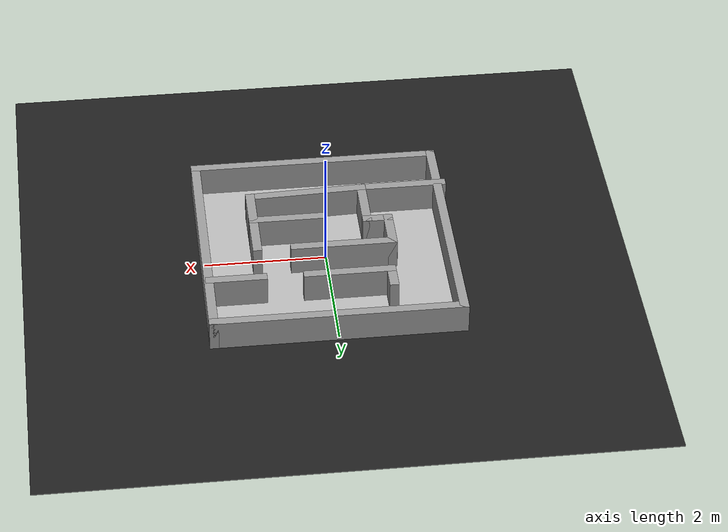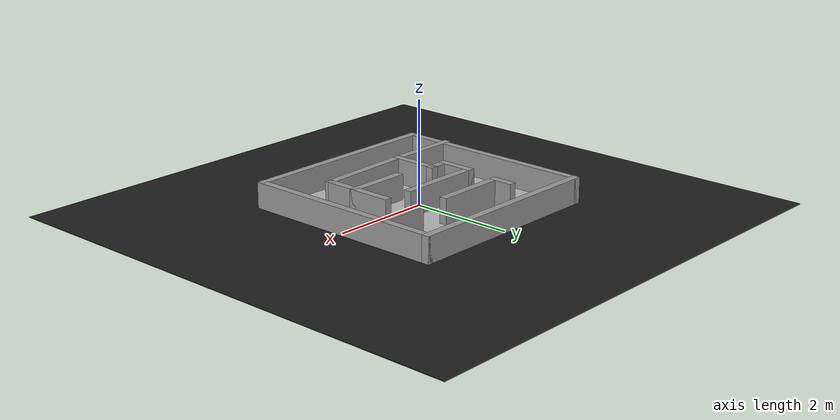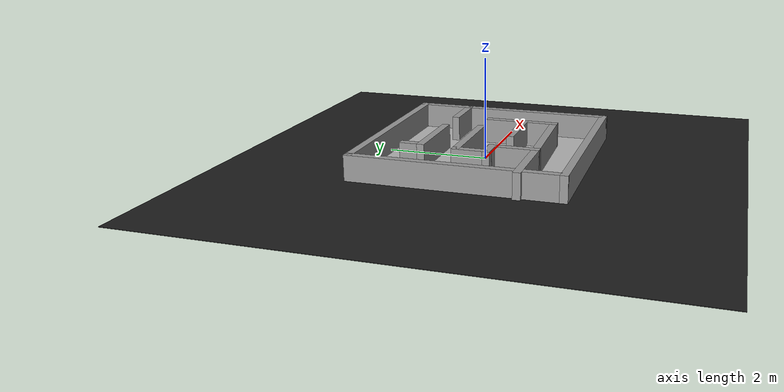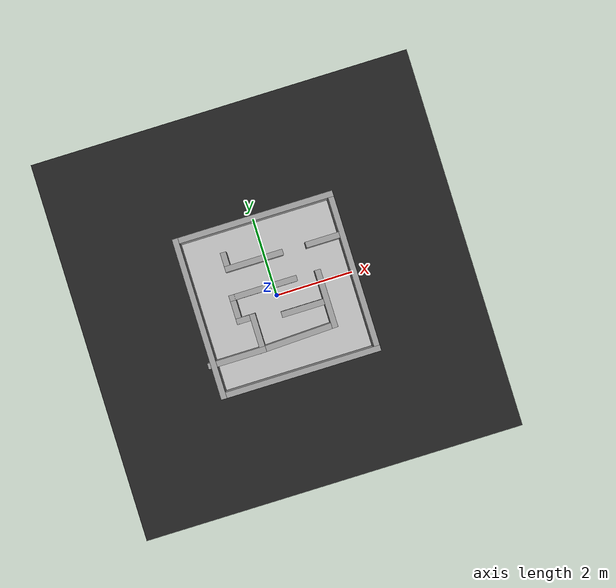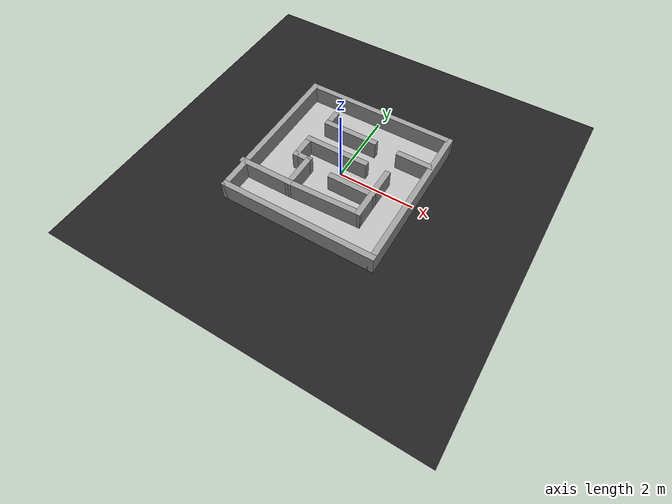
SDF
<sdf version='1.7'>
  <world name='default'>
    <scene>
      <ambient>0 0 0 1</ambient>
      <shadows>0</shadows>
      <grid>0</grid>
      <background>0.7 0.7 0.7 1</background>
    </scene>

    <model name='ground'>
      <pose frame=''>0 0 -0.1 0 -0 0</pose>
      <static>1</static>
      <link name='ground'>
        <collision name='ground_coll'>
          <geometry>
            <box>
              <size>8 8 0.01</size>
            </box>
          </geometry>
          <surface>
            <contact>
              <ode/>
            </contact>
            <bounce/>
            <friction>
              <torsional>
                <ode/>
              </torsional>
              <ode/>
            </friction>
          </surface>
          <max_contacts>10</max_contacts>
        </collision>
        <visual name='ground_vis'>
          <geometry>
            <box>
              <size>10 10 0.01</size>
            </box>
          </geometry>
          <material>
            <script>
              <uri>file://media/materials/scripts/gazebo.material</uri>
              <name>Gazebo/FlatBlack</name>
            </script>
          </material>
        </visual>
        <self_collide>0</self_collide>
        <kinematic>0</kinematic>
        <gravity>1</gravity>
      </link>
    </model>

    <magnetic_field>6e-06 2.3e-05 -4.2e-05</magnetic_field>
    <atmosphere type='adiabatic'/>
    <physics name='default_physics' default='0' type='ode'>
      <max_step_size>0.005</max_step_size>
      <real_time_factor>1</real_time_factor>
      <real_time_update_rate>1000</real_time_update_rate>
      <gravity>0 0 -9.8</gravity>
    </physics>
    <spherical_coordinates>
      <surface_model>EARTH_WGS84</surface_model>
      <latitude_deg>0</latitude_deg>
      <longitude_deg>0</longitude_deg>
      <elevation>0</elevation>
      <heading_deg>0</heading_deg>
    </spherical_coordinates>

    <include>
      <uri>model://sun</uri>
    </include>

    <include>
      <uri>model://lidar_course1/course</uri>
    </include>

    <include>
      <uri>model://lidar_course1/Outer_Walls</uri>
    </include>

    <include>
      <uri>model://lidar_course1/Maze1</uri>
    </include>
  </world>
</sdf>

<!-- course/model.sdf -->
<sdf version="1.6">
  <model name="course">
    <static>true</static>
    <link name="course_link">
      <collision name="course_collision">
        <geometry>
          <plane>
            <normal>0 0 1</normal>
            <size>4 4</size>
          </plane>
        </geometry>
        <surface>
          <friction>
            <ode>
              <mu>100</mu>
              <mu2>50</mu2>
            </ode>
          </friction>
        </surface>
      </collision>
      <visual name="course_visual">
        <cast_shadows>false</cast_shadows>
        <geometry>
	        <plane>
            <normal>0 0 1</normal>
            <size>4 4</size>
          </plane>
        </geometry>
	      <material>
          <script>
            <uri>model://lidar_course1/course/materials/scripts</uri>
            <uri>model://lidar_course1/course/materials/textures</uri>
            <name>course</name>
          </script>
        </material>
      </visual>
    </link>
  </model>
</sdf>

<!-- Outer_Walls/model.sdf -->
<sdf version='1.7'>
  <model name='Outer_Walls'>
    <link name='Wall_13'>
      <pose>-2 0 0 0 -0 1.5708</pose>
      <self_collide>0</self_collide>
      <enable_wind>0</enable_wind>
      <kinematic>0</kinematic>
      <visual name='Wall_13_Visual'>
        <pose>0 0 0.25 0 -0 0</pose>
        <geometry>
          <box>
            <size>4.15 0.15 0.5</size>
          </box>
        </geometry>
        <material>
          <script>
            <uri>file://media/materials/scripts/gazebo.material</uri>
            <name>Gazebo/Grey</name>
          </script>
          <ambient>1 1 1 1</ambient>
          <shader type='pixel'/>
        </material>
        <meta>
          <layer>0</layer>
        </meta>
        <transparency>0</transparency>
        <cast_shadows>1</cast_shadows>
      </visual>
      <collision name='Wall_13_Collision'>
        <laser_retro>0</laser_retro>
        <max_contacts>10</max_contacts>
        <pose>0 0 0.25 0 -0 0</pose>
        <geometry>
          <box>
            <size>4.15 0.15 0.5</size>
          </box>
        </geometry>
        <surface>
          <friction>
            <ode>
              <mu>1</mu>
              <mu2>1</mu2>
              <fdir1>0 0 0</fdir1>
              <slip1>0</slip1>
              <slip2>0</slip2>
            </ode>
            <torsional>
              <coefficient>1</coefficient>
              <patch_radius>0</patch_radius>
              <surface_radius>0</surface_radius>
              <use_patch_radius>1</use_patch_radius>
              <ode>
                <slip>0</slip>
              </ode>
            </torsional>
          </friction>
          <bounce>
            <restitution_coefficient>0</restitution_coefficient>
            <threshold>1e+06</threshold>
          </bounce>
          <contact>
            <collide_without_contact>0</collide_without_contact>
            <collide_without_contact_bitmask>1</collide_without_contact_bitmask>
            <collide_bitmask>1</collide_bitmask>
            <ode>
              <soft_cfm>0</soft_cfm>
              <soft_erp>0.2</soft_erp>
              <kp>1e+13</kp>
              <kd>1</kd>
              <max_vel>0.01</max_vel>
              <min_depth>0</min_depth>
            </ode>
            <bullet>
              <split_impulse>1</split_impulse>
              <split_impulse_penetration_threshold>-0.01</split_impulse_penetration_threshold>
              <soft_cfm>0</soft_cfm>
              <soft_erp>0.2</soft_erp>
              <kp>1e+13</kp>
              <kd>1</kd>
            </bullet>
          </contact>
        </surface>
      </collision>
    </link>
    <link name='Wall_18'>
      <pose>0 2 0 0 -0 0</pose>
      <self_collide>0</self_collide>
      <enable_wind>0</enable_wind>
      <kinematic>0</kinematic>
      <visual name='Wall_18_Visual'>
        <pose>0 0 0.25 0 -0 0</pose>
        <geometry>
          <box>
            <size>4.15 0.15 0.5</size>
          </box>
        </geometry>
        <material>
          <script>
            <uri>file://media/materials/scripts/gazebo.material</uri>
            <name>Gazebo/Grey</name>
          </script>
          <ambient>1 1 1 1</ambient>
          <shader type='pixel'/>
        </material>
        <meta>
          <layer>0</layer>
        </meta>
        <transparency>0</transparency>
        <cast_shadows>1</cast_shadows>
      </visual>
      <collision name='Wall_18_Collision'>
        <laser_retro>0</laser_retro>
        <max_contacts>10</max_contacts>
        <pose>0 0 0.25 0 -0 0</pose>
        <geometry>
          <box>
            <size>4.15 0.15 0.5</size>
          </box>
        </geometry>
        <surface>
          <friction>
            <ode>
              <mu>1</mu>
              <mu2>1</mu2>
              <fdir1>0 0 0</fdir1>
              <slip1>0</slip1>
              <slip2>0</slip2>
            </ode>
            <torsional>
              <coefficient>1</coefficient>
              <patch_radius>0</patch_radius>
              <surface_radius>0</surface_radius>
              <use_patch_radius>1</use_patch_radius>
              <ode>
                <slip>0</slip>
              </ode>
            </torsional>
          </friction>
          <bounce>
            <restitution_coefficient>0</restitution_coefficient>
            <threshold>1e+06</threshold>
          </bounce>
          <contact>
            <collide_without_contact>0</collide_without_contact>
            <collide_without_contact_bitmask>1</collide_without_contact_bitmask>
            <collide_bitmask>1</collide_bitmask>
            <ode>
              <soft_cfm>0</soft_cfm>
              <soft_erp>0.2</soft_erp>
              <kp>1e+13</kp>
              <kd>1</kd>
              <max_vel>0.01</max_vel>
              <min_depth>0</min_depth>
            </ode>
            <bullet>
              <split_impulse>1</split_impulse>
              <split_impulse_penetration_threshold>-0.01</split_impulse_penetration_threshold>
              <soft_cfm>0</soft_cfm>
              <soft_erp>0.2</soft_erp>
              <kp>1e+13</kp>
              <kd>1</kd>
            </bullet>
          </contact>
        </surface>
      </collision>
    </link>
    <link name='Wall_20'>
      <pose>0 -2 0 0 -0 0</pose>
      <self_collide>0</self_collide>
      <enable_wind>0</enable_wind>
      <kinematic>0</kinematic>
      <gravity>1</gravity>
      <inertial>
        <mass>1</mass>
        <pose>0 0 0 0 -0 0</pose>
        <inertia>
          <ixx>1</ixx>
          <ixy>0</ixy>
          <ixz>0</ixz>
          <iyy>1</iyy>
          <iyz>0</iyz>
          <izz>1</izz>
        </inertia>
      </inertial>
      <visual name='Wall_20_Visual'>
        <pose>0 0 0.25 0 -0 0</pose>
        <geometry>
          <box>
            <size>4.15 0.15 0.5</size>
          </box>
        </geometry>
        <material>
          <script>
            <uri>file://media/materials/scripts/gazebo.material</uri>
            <name>Gazebo/Grey</name>
          </script>
          <ambient>1 1 1 1</ambient>
          <shader type='pixel'>
            <normal_map>__default__</normal_map>
          </shader>
          <diffuse>0.7 0.7 0.7 1</diffuse>
          <specular>0.01 0.01 0.01 1</specular>
          <emissive>0 0 0 1</emissive>
        </material>
        <meta>
          <layer>0</layer>
        </meta>
        <transparency>0</transparency>
        <cast_shadows>1</cast_shadows>
      </visual>
      <collision name='Wall_20_Collision'>
        <laser_retro>0</laser_retro>
        <max_contacts>10</max_contacts>
        <pose>0 0 0.25 0 -0 0</pose>
        <geometry>
          <box>
            <size>4.15 0.15 0.5</size>
          </box>
        </geometry>
        <surface>
          <friction>
            <ode>
              <mu>1</mu>
              <mu2>1</mu2>
              <fdir1>0 0 0</fdir1>
              <slip1>0</slip1>
              <slip2>0</slip2>
            </ode>
            <torsional>
              <coefficient>1</coefficient>
              <patch_radius>0</patch_radius>
              <surface_radius>0</surface_radius>
              <use_patch_radius>1</use_patch_radius>
              <ode>
                <slip>0</slip>
              </ode>
            </torsional>
          </friction>
          <bounce>
            <restitution_coefficient>0</restitution_coefficient>
            <threshold>1e+06</threshold>
          </bounce>
          <contact>
            <collide_without_contact>0</collide_without_contact>
            <collide_without_contact_bitmask>1</collide_without_contact_bitmask>
            <collide_bitmask>1</collide_bitmask>
            <ode>
              <soft_cfm>0</soft_cfm>
              <soft_erp>0.2</soft_erp>
              <kp>1e+13</kp>
              <kd>1</kd>
              <max_vel>0.01</max_vel>
              <min_depth>0</min_depth>
            </ode>
            <bullet>
              <split_impulse>1</split_impulse>
              <split_impulse_penetration_threshold>-0.01</split_impulse_penetration_threshold>
              <soft_cfm>0</soft_cfm>
              <soft_erp>0.2</soft_erp>
              <kp>1e+13</kp>
              <kd>1</kd>
            </bullet>
          </contact>
        </surface>
      </collision>
    </link>
    <link name='Wall_22'>
      <pose>2 0 0 0 -0 1.5708</pose>
      <self_collide>0</self_collide>
      <enable_wind>0</enable_wind>
      <kinematic>0</kinematic>
      <visual name='Wall_22_Visual'>
        <pose>0 0 0.25 0 -0 0</pose>
        <geometry>
          <box>
            <size>4.15 0.15 0.5</size>
          </box>
        </geometry>
        <material>
          <script>
            <uri>file://media/materials/scripts/gazebo.material</uri>
            <name>Gazebo/Grey</name>
          </script>
          <ambient>1 1 1 1</ambient>
          <shader type='pixel'/>
        </material>
        <meta>
          <layer>0</layer>
        </meta>
        <transparency>0</transparency>
        <cast_shadows>1</cast_shadows>
      </visual>
      <collision name='Wall_22_Collision'>
        <laser_retro>0</laser_retro>
        <max_contacts>10</max_contacts>
        <pose>0 0 0.25 0 -0 0</pose>
        <geometry>
          <box>
            <size>4.15 0.15 0.5</size>
          </box>
        </geometry>
        <surface>
          <friction>
            <ode>
              <mu>1</mu>
              <mu2>1</mu2>
              <fdir1>0 0 0</fdir1>
              <slip1>0</slip1>
              <slip2>0</slip2>
            </ode>
            <torsional>
              <coefficient>1</coefficient>
              <patch_radius>0</patch_radius>
              <surface_radius>0</surface_radius>
              <use_patch_radius>1</use_patch_radius>
              <ode>
                <slip>0</slip>
              </ode>
            </torsional>
          </friction>
          <bounce>
            <restitution_coefficient>0</restitution_coefficient>
            <threshold>1e+06</threshold>
          </bounce>
          <contact>
            <collide_without_contact>0</collide_without_contact>
            <collide_without_contact_bitmask>1</collide_without_contact_bitmask>
            <collide_bitmask>1</collide_bitmask>
            <ode>
              <soft_cfm>0</soft_cfm>
              <soft_erp>0.2</soft_erp>
              <kp>1e+13</kp>
              <kd>1</kd>
              <max_vel>0.01</max_vel>
              <min_depth>0</min_depth>
            </ode>
            <bullet>
              <split_impulse>1</split_impulse>
              <split_impulse_penetration_threshold>-0.01</split_impulse_penetration_threshold>
              <soft_cfm>0</soft_cfm>
              <soft_erp>0.2</soft_erp>
              <kp>1e+13</kp>
              <kd>1</kd>
            </bullet>
          </contact>
        </surface>
      </collision>
    </link>
    <static>1</static>
    <allow_auto_disable>1</allow_auto_disable>
  </model>
</sdf>

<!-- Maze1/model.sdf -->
<sdf version='1.7'>
  <model name='Maze1'>
    <pose>-0.0455 0.068623 0 0 -0 0</pose>
    <link name='Wall_26'>
      <collision name='Wall_26_Collision'>
        <geometry>
          <box>
            <size>1.5 0.15 0.5</size>
          </box>
        </geometry>
        <pose>0 0 0.25 0 -0 0</pose>
      </collision>
      <visual name='Wall_26_Visual'>
        <pose>0 0 0.25 0 -0 0</pose>
        <geometry>
          <box>
            <size>1.5 0.15 0.5</size>
          </box>
        </geometry>
        <material>
          <script>
            <uri>file://media/materials/scripts/gazebo.material</uri>
            <name>Gazebo/Grey</name>
          </script>
          <ambient>1 1 1 1</ambient>
        </material>
        <meta>
          <layer>0</layer>
        </meta>
      </visual>
      <pose>-1.3495 -1.25862 0 0 -0 0</pose>
    </link>
    <link name='Wall_27'>
      <collision name='Wall_27_Collision'>
        <geometry>
          <box>
            <size>1 0.15 0.5</size>
          </box>
        </geometry>
        <pose>0 0 0.25 0 -0 0</pose>
      </collision>
      <visual name='Wall_27_Visual'>
        <pose>0 0 0.25 0 -0 0</pose>
        <geometry>
          <box>
            <size>1 0.15 0.5</size>
          </box>
        </geometry>
        <material>
          <script>
            <uri>file://media/materials/scripts/gazebo.material</uri>
            <name>Gazebo/Grey</name>
          </script>
          <ambient>1 1 1 1</ambient>
        </material>
        <meta>
          <layer>0</layer>
        </meta>
      </visual>
      <pose>-0.6745 -0.833623 0 0 -0 1.5708</pose>
    </link>
    <link name='Wall_28'>
      <collision name='Wall_28_Collision'>
        <geometry>
          <box>
            <size>0.5 0.15 0.5</size>
          </box>
        </geometry>
        <pose>0 0 0.25 0 -0 0</pose>
      </collision>
      <visual name='Wall_28_Visual'>
        <pose>0 0 0.25 0 -0 0</pose>
        <geometry>
          <box>
            <size>0.5 0.15 0.5</size>
          </box>
        </geometry>
        <material>
          <script>
            <uri>file://media/materials/scripts/gazebo.material</uri>
            <name>Gazebo/Grey</name>
          </script>
          <ambient>1 1 1 1</ambient>
        </material>
        <meta>
          <layer>0</layer>
        </meta>
      </visual>
      <pose>-0.8495 -0.408623 0 0 -0 3.14159</pose>
    </link>
    <link name='Wall_29'>
      <collision name='Wall_29_Collision'>
        <geometry>
          <box>
            <size>0.75 0.15 0.5</size>
          </box>
        </geometry>
        <pose>0 0 0.25 0 -0 0</pose>
      </collision>
      <visual name='Wall_29_Visual'>
        <pose>0 0 0.25 0 -0 0</pose>
        <geometry>
          <box>
            <size>0.75 0.15 0.5</size>
          </box>
        </geometry>
        <material>
          <script>
            <uri>file://media/materials/scripts/gazebo.material</uri>
            <name>Gazebo/Grey</name>
          </script>
          <ambient>1 1 1 1</ambient>
        </material>
        <meta>
          <layer>0</layer>
        </meta>
      </visual>
      <pose>-1.0245 -0.108623 0 0 -0 1.5708</pose>
    </link>
    <link name='Wall_30'>
      <collision name='Wall_30_Collision'>
        <geometry>
          <box>
            <size>1.75 0.15 0.5</size>
          </box>
        </geometry>
        <pose>0 0 0.25 0 -0 0</pose>
      </collision>
      <visual name='Wall_30_Visual'>
        <pose>0 0 0.25 0 -0 0</pose>
        <geometry>
          <box>
            <size>1.75 0.15 0.5</size>
          </box>
        </geometry>
        <material>
          <script>
            <uri>file://media/materials/scripts/gazebo.material</uri>
            <name>Gazebo/Grey</name>
          </script>
          <ambient>1 1 1 1</ambient>
        </material>
        <meta>
          <layer>0</layer>
        </meta>
      </visual>
      <pose>-0.2245 0.191377 0 0 -0 0</pose>
    </link>
    <link name='Wall_33'>
      <collision name='Wall_33_Collision'>
        <geometry>
          <box>
            <size>1 0.15 0.5</size>
          </box>
        </geometry>
        <pose>0 0 0.25 0 -0 0</pose>
      </collision>
      <visual name='Wall_33_Visual'>
        <pose>0 0 0.25 0 -0 0</pose>
        <geometry>
          <box>
            <size>1 0.15 0.5</size>
          </box>
        </geometry>
        <material>
          <script>
            <uri>file://media/materials/scripts/gazebo.material</uri>
            <name>Gazebo/Grey</name>
          </script>
          <ambient>1 1 1 1</ambient>
        </material>
        <meta>
          <layer>0</layer>
        </meta>
      </visual>
      <pose>1.5995 0.903377 0 0 -0 0</pose>
    </link>
    <link name='Wall_35'>
      <collision name='Wall_35_Collision'>
        <geometry>
          <box>
            <size>1.5 0.15 0.5</size>
          </box>
        </geometry>
        <pose>0 0 0.25 0 -0 0</pose>
      </collision>
      <visual name='Wall_35_Visual'>
        <pose>0 0 0.25 0 -0 0</pose>
        <geometry>
          <box>
            <size>1.5 0.15 0.5</size>
          </box>
        </geometry>
        <material>
          <script>
            <uri>file://media/materials/scripts/gazebo.material</uri>
            <name>Gazebo/Grey</name>
          </script>
          <ambient>1 1 1 1</ambient>
        </material>
        <meta>
          <layer>0</layer>
        </meta>
      </visual>
      <pose>-0.2395 0.911377 0 0 -0 3.14159</pose>
    </link>
    <link name='Wall_36'>
      <collision name='Wall_36_Collision'>
        <geometry>
          <box>
            <size>0.5 0.15 0.5</size>
          </box>
        </geometry>
        <pose>0 0 0.25 0 -0 0</pose>
      </collision>
      <visual name='Wall_36_Visual'>
        <pose>0 0 0.25 0 -0 0</pose>
        <geometry>
          <box>
            <size>0.5 0.15 0.5</size>
          </box>
        </geometry>
        <material>
          <script>
            <uri>file://media/materials/scripts/gazebo.material</uri>
            <name>Gazebo/Grey</name>
          </script>
          <ambient>1 1 1 1</ambient>
        </material>
        <meta>
          <layer>0</layer>
        </meta>
      </visual>
      <pose>-0.9145 1.08638 0 0 -0 1.5708</pose>
    </link>
    <link name='Wall_38'>
      <collision name='Wall_38_Collision'>
        <geometry>
          <box>
            <size>1.5 0.15 0.5</size>
          </box>
        </geometry>
        <pose>0 0 0.25 0 -0 0</pose>
      </collision>
      <visual name='Wall_38_Visual'>
        <pose>0 0 0.25 0 -0 0</pose>
        <geometry>
          <box>
            <size>1.5 0.15 0.5</size>
          </box>
        </geometry>
        <material>
          <script>
            <uri>file://media/materials/scripts/gazebo.material</uri>
            <name>Gazebo/Grey</name>
          </script>
          <ambient>1 1 1 1</ambient>
        </material>
        <meta>
          <layer>0</layer>
        </meta>
      </visual>
      <pose>1.1955 -0.513623 0 0 -0 -1.5708</pose>
    </link>
    <link name='Wall_39'>
      <collision name='Wall_39_Collision'>
        <geometry>
          <box>
            <size>2.02131 0.15 0.5</size>
          </box>
        </geometry>
        <pose>0 0 0.25 0 -0 0</pose>
      </collision>
      <visual name='Wall_39_Visual'>
        <pose>0 0 0.25 0 -0 0</pose>
        <geometry>
          <box>
            <size>2.02131 0.15 0.5</size>
          </box>
        </geometry>
        <material>
          <script>
            <uri>file://media/materials/scripts/gazebo.material</uri>
            <name>Gazebo/Grey</name>
          </script>
          <ambient>1 1 1 1</ambient>
        </material>
        <meta>
          <layer>0</layer>
        </meta>
      </visual>
      <pose>0.2605 -1.22362 0 0 -0 -3.10418</pose>
    </link>
    <link name='Wall_41'>
      <collision name='Wall_41_Collision'>
        <geometry>
          <box>
            <size>1.25 0.15 0.5</size>
          </box>
        </geometry>
        <pose>0 0 0.25 0 -0 0</pose>
      </collision>
      <visual name='Wall_41_Visual'>
        <pose>0 0 0.25 0 -0 0</pose>
        <geometry>
          <box>
            <size>1.25 0.15 0.5</size>
          </box>
        </geometry>
        <material>
          <script>
            <uri>file://media/materials/scripts/gazebo.material</uri>
            <name>Gazebo/Grey</name>
          </script>
          <ambient>1 1 1 1</ambient>
        </material>
        <meta>
          <layer>0</layer>
        </meta>
      </visual>
      <pose>0.6455 -0.568623 0 0 -0 3.14159</pose>
    </link>
    <static>1</static>
  </model>
</sdf>
